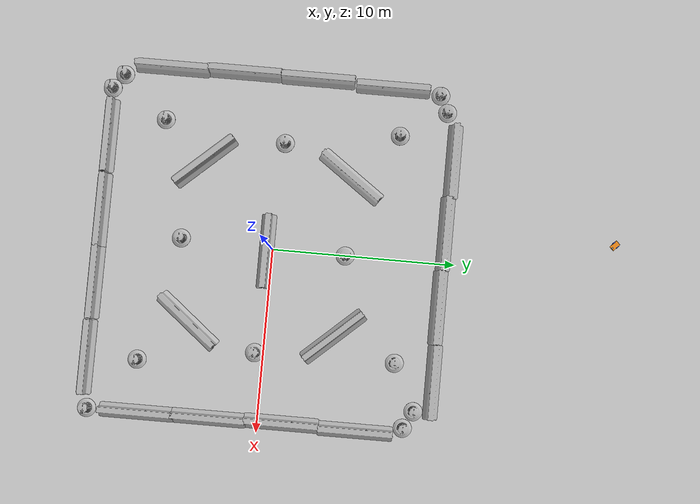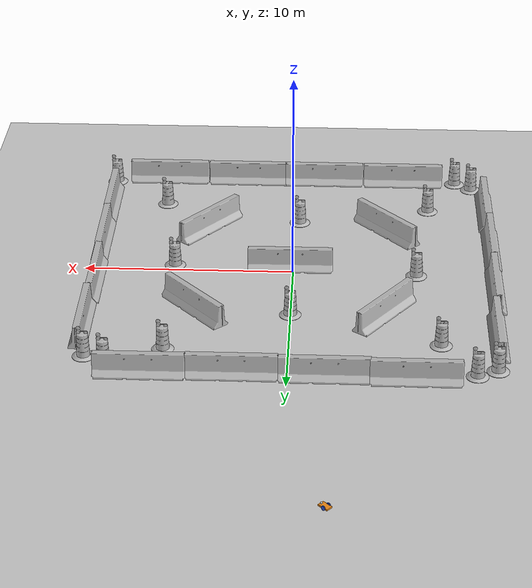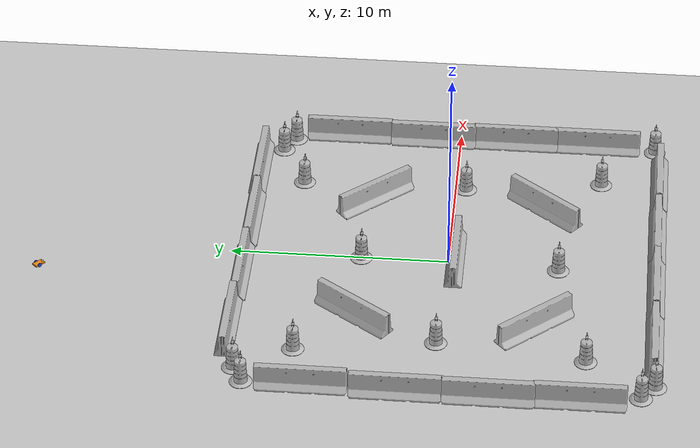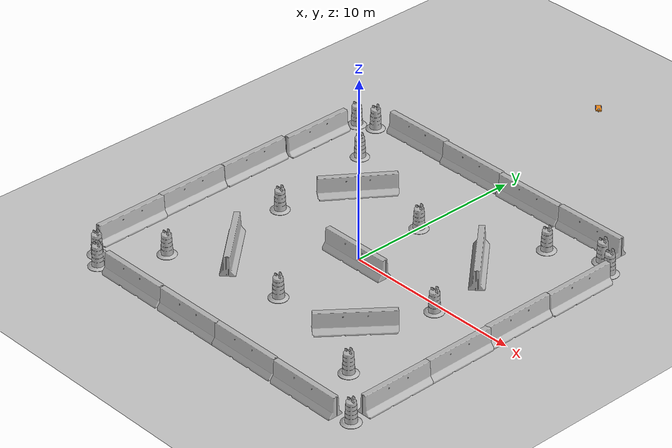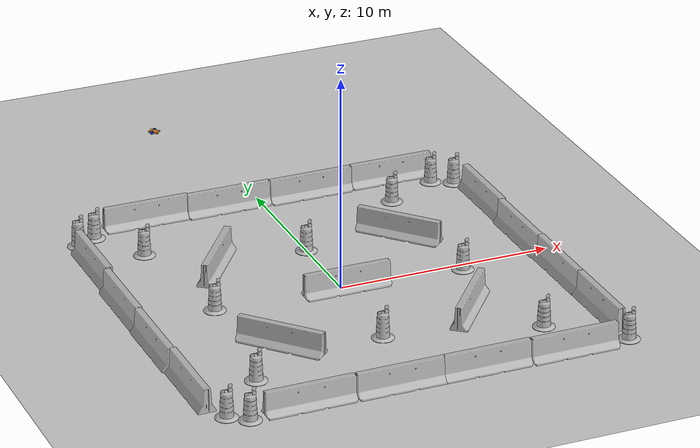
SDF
<sdf version="1.7">
 <world name="default">
  <light name="sun" type="directional">
   <pose>0 0 10 0 -0 0</pose>
   <diffuse>0.8 0.8 0.8 1</diffuse>
   <specular>0.2 0.2 0.2 1</specular>
   <attenuation>
    <range>1000</range>
    <constant>0.9</constant>
    <linear>0.01</linear>
    <quadratic>0.001</quadratic>
   </attenuation>
   <direction>-0.5 0.1 -0.9</direction>
   <spot><inner_angle>0</inner_angle><outer_angle>0</outer_angle><falloff>0</falloff></spot>
  </light>
  <model name="ground_plane">
   <static>1</static>
   <link name="link">
    <collision name="collision">
     <geometry><plane><normal>0 0 1</normal><size>100 100</size></plane></geometry>
     <surface><friction><ode><mu>100</mu><mu2>50</mu2></ode></friction></surface>
    </collision>
    <visual name="visual">
     <cast_shadows>0</cast_shadows>
     <geometry><plane><normal>0 0 1</normal><size>100 100</size></plane></geometry>
     <material>
      <script><uri>file://media/materials/scripts/gazebo.material</uri><name>Gazebo/Grey</name></script>
     </material>
    </visual>
   </link>
  </model>
  <gravity>0 0 -9.8</gravity>
  <magnetic_field>6e-06 2.3e-05 -4.2e-05</magnetic_field>
  <atmosphere type="adiabatic"/>
  <physics name="default_physics" default="0" type="ode">
   <max_step_size>0.001</max_step_size>
   <real_time_factor>1</real_time_factor>
   <real_time_update_rate>1000</real_time_update_rate>
  </physics>
  <scene><ambient>0.4 0.4 0.4 1</ambient><background>0.7 0.7 0.7 1</background><shadows>1</shadows></scene>
  <spherical_coordinates>
   <surface_model>EARTH_WGS84</surface_model>
   <latitude_deg>0</latitude_deg>
   <longitude_deg>0</longitude_deg>
   <elevation>0</elevation>
   <heading_deg>0</heading_deg>
  </spherical_coordinates>
  <model name="jersey_barrier">
   <static>1</static>
   <link name="link">
    <visual name="visual">
     <geometry><mesh><uri>model://jersey_barrier/meshes/jersey_barrier.dae</uri></mesh></geometry>
    </visual>
    <collision name="upright">
     <pose>0 0 0.5715 0 -0 0</pose>
     <geometry><box><size>4.06542 0.3063 1.143</size></box></geometry>
    </collision>
    <collision name="base">
     <pose>0 0 0.032258 0 -0 0</pose>
     <geometry><box><size>4.06542 0.8107 0.064516</size></box></geometry>
    </collision>
    <collision name="base2">
     <pose>0 0 0.1 0 -0 0</pose>
     <geometry><box><size>4.06542 0.65 0.1</size></box></geometry>
    </collision>
    <collision name="base3">
     <pose>0 0 0.2 0 -0 0</pose>
     <geometry><box><size>4.06542 0.5 0.1</size></box></geometry>
    </collision>
    <collision name="left-angle">
     <pose>0 -0.224 0.2401 0.9 -0 0</pose>
     <geometry><box><size>4.06542 0.5 0.064516</size></box></geometry>
    </collision>
    <collision name="right-angle">
     <pose>0 0.224 0.2401 -0.9 0 0</pose>
     <geometry><box><size>4.06542 0.5 0.064516</size></box></geometry>
    </collision>
   </link>
   <pose>-5.65677 9.4608 0 0 -0 0</pose>
  </model>
  <model name="jersey_barrier_clone">
   <static>1</static>
   <link name="link">
    <visual name="visual">
     <geometry><mesh><uri>model://jersey_barrier/meshes/jersey_barrier.dae</uri></mesh></geometry>
    </visual>
    <collision name="upright">
     <pose>0 0 0.5715 0 -0 0</pose>
     <geometry><box><size>4.06542 0.3063 1.143</size></box></geometry>
    </collision>
    <collision name="base">
     <pose>0 0 0.032258 0 -0 0</pose>
     <geometry><box><size>4.06542 0.8107 0.064516</size></box></geometry>
    </collision>
    <collision name="base2">
     <pose>0 0 0.1 0 -0 0</pose>
     <geometry><box><size>4.06542 0.65 0.1</size></box></geometry>
    </collision>
    <collision name="base3">
     <pose>0 0 0.2 0 -0 0</pose>
     <geometry><box><size>4.06542 0.5 0.1</size></box></geometry>
    </collision>
    <collision name="left-angle">
     <pose>0 -0.224 0.2401 0.9 -0 0</pose>
     <geometry><box><size>4.06542 0.5 0.064516</size></box></geometry>
    </collision>
    <collision name="right-angle">
     <pose>0 0.224 0.2401 -0.9 0 0</pose>
     <geometry><box><size>4.06542 0.5 0.064516</size></box></geometry>
    </collision>
   </link>
   <pose>-1.65987 9.36075 0 0 -0 0</pose>
  </model>
  <model name="jersey_barrier_clone_0">
   <static>1</static>
   <link name="link">
    <visual name="visual">
     <geometry><mesh><uri>model://jersey_barrier/meshes/jersey_barrier.dae</uri></mesh></geometry>
    </visual>
    <collision name="upright">
     <pose>0 0 0.5715 0 -0 0</pose>
     <geometry><box><size>4.06542 0.3063 1.143</size></box></geometry>
    </collision>
    <collision name="base">
     <pose>0 0 0.032258 0 -0 0</pose>
     <geometry><box><size>4.06542 0.8107 0.064516</size></box></geometry>
    </collision>
    <collision name="base2">
     <pose>0 0 0.1 0 -0 0</pose>
     <geometry><box><size>4.06542 0.65 0.1</size></box></geometry>
    </collision>
    <collision name="base3">
     <pose>0 0 0.2 0 -0 0</pose>
     <geometry><box><size>4.06542 0.5 0.1</size></box></geometry>
    </collision>
    <collision name="left-angle">
     <pose>0 -0.224 0.2401 0.9 -0 0</pose>
     <geometry><box><size>4.06542 0.5 0.064516</size></box></geometry>
    </collision>
    <collision name="right-angle">
     <pose>0 0.224 0.2401 -0.9 0 0</pose>
     <geometry><box><size>4.06542 0.5 0.064516</size></box></geometry>
    </collision>
   </link>
   <pose>2.39773 9.29085 0 0 -0 0</pose>
  </model>
  <model name="jersey_barrier_clone_1">
   <static>1</static>
   <link name="link">
    <visual name="visual">
     <geometry><mesh><uri>model://jersey_barrier/meshes/jersey_barrier.dae</uri></mesh></geometry>
    </visual>
    <collision name="upright">
     <pose>0 0 0.5715 0 -0 0</pose>
     <geometry><box><size>4.06542 0.3063 1.143</size></box></geometry>
    </collision>
    <collision name="base">
     <pose>0 0 0.032258 0 -0 0</pose>
     <geometry><box><size>4.06542 0.8107 0.064516</size></box></geometry>
    </collision>
    <collision name="base2">
     <pose>0 0 0.1 0 -0 0</pose>
     <geometry><box><size>4.06542 0.65 0.1</size></box></geometry>
    </collision>
    <collision name="base3">
     <pose>0 0 0.2 0 -0 0</pose>
     <geometry><box><size>4.06542 0.5 0.1</size></box></geometry>
    </collision>
    <collision name="left-angle">
     <pose>0 -0.224 0.2401 0.9 -0 0</pose>
     <geometry><box><size>4.06542 0.5 0.064516</size></box></geometry>
    </collision>
    <collision name="right-angle">
     <pose>0 0.224 0.2401 -0.9 0 0</pose>
     <geometry><box><size>4.06542 0.5 0.064516</size></box></geometry>
    </collision>
   </link>
   <pose>6.45464 9.33993 0 0 -0 0</pose>
  </model>
  <model name="jersey_barrier_clone_3">
   <static>1</static>
   <link name="link">
    <visual name="visual">
     <geometry><mesh><uri>model://jersey_barrier/meshes/jersey_barrier.dae</uri></mesh></geometry>
    </visual>
    <collision name="upright">
     <pose>0 0 0.5715 0 -0 0</pose>
     <geometry><box><size>4.06542 0.3063 1.143</size></box></geometry>
    </collision>
    <collision name="base">
     <pose>0 0 0.032258 0 -0 0</pose>
     <geometry><box><size>4.06542 0.8107 0.064516</size></box></geometry>
    </collision>
    <collision name="base2">
     <pose>0 0 0.1 0 -0 0</pose>
     <geometry><box><size>4.06542 0.65 0.1</size></box></geometry>
    </collision>
    <collision name="base3">
     <pose>0 0 0.2 0 -0 0</pose>
     <geometry><box><size>4.06542 0.5 0.1</size></box></geometry>
    </collision>
    <collision name="left-angle">
     <pose>0 -0.224 0.2401 0.9 -0 0</pose>
     <geometry><box><size>4.06542 0.5 0.064516</size></box></geometry>
    </collision>
    <collision name="right-angle">
     <pose>0 0.224 0.2401 -0.9 0 0</pose>
     <geometry><box><size>4.06542 0.5 0.064516</size></box></geometry>
    </collision>
   </link>
   <pose>9.44656 5.35522 0 0 0 -1.56865</pose>
  </model>
  <model name="jersey_barrier_clone_3_clone">
   <static>1</static>
   <link name="link">
    <visual name="visual">
     <geometry><mesh><uri>model://jersey_barrier/meshes/jersey_barrier.dae</uri></mesh></geometry>
    </visual>
    <collision name="upright">
     <pose>0 0 0.5715 0 -0 0</pose>
     <geometry><box><size>4.06542 0.3063 1.143</size></box></geometry>
    </collision>
    <collision name="base">
     <pose>0 0 0.032258 0 -0 0</pose>
     <geometry><box><size>4.06542 0.8107 0.064516</size></box></geometry>
    </collision>
    <collision name="base2">
     <pose>0 0 0.1 0 -0 0</pose>
     <geometry><box><size>4.06542 0.65 0.1</size></box></geometry>
    </collision>
    <collision name="base3">
     <pose>0 0 0.2 0 -0 0</pose>
     <geometry><box><size>4.06542 0.5 0.1</size></box></geometry>
    </collision>
    <collision name="left-angle">
     <pose>0 -0.224 0.2401 0.9 -0 0</pose>
     <geometry><box><size>4.06542 0.5 0.064516</size></box></geometry>
    </collision>
    <collision name="right-angle">
     <pose>0 0.224 0.2401 -0.9 0 0</pose>
     <geometry><box><size>4.06542 0.5 0.064516</size></box></geometry>
    </collision>
   </link>
   <pose>9.3727 1.33119 0 0 0 -1.56865</pose>
  </model>
  <model name="jersey_barrier_clone_3_clone_0">
   <static>1</static>
   <link name="link">
    <visual name="visual">
     <geometry><mesh><uri>model://jersey_barrier/meshes/jersey_barrier.dae</uri></mesh></geometry>
    </visual>
    <collision name="upright">
     <pose>0 0 0.5715 0 -0 0</pose>
     <geometry><box><size>4.06542 0.3063 1.143</size></box></geometry>
    </collision>
    <collision name="base">
     <pose>0 0 0.032258 0 -0 0</pose>
     <geometry><box><size>4.06542 0.8107 0.064516</size></box></geometry>
    </collision>
    <collision name="base2">
     <pose>0 0 0.1 0 -0 0</pose>
     <geometry><box><size>4.06542 0.65 0.1</size></box></geometry>
    </collision>
    <collision name="base3">
     <pose>0 0 0.2 0 -0 0</pose>
     <geometry><box><size>4.06542 0.5 0.1</size></box></geometry>
    </collision>
    <collision name="left-angle">
     <pose>0 -0.224 0.2401 0.9 -0 0</pose>
     <geometry><box><size>4.06542 0.5 0.064516</size></box></geometry>
    </collision>
    <collision name="right-angle">
     <pose>0 0.224 0.2401 -0.9 0 0</pose>
     <geometry><box><size>4.06542 0.5 0.064516</size></box></geometry>
    </collision>
   </link>
   <pose>9.4315 -2.6268 0 0 0 -1.56865</pose>
  </model>
  <model name="jersey_barrier_clone_3_clone_1">
   <static>1</static>
   <link name="link">
    <visual name="visual">
     <geometry><mesh><uri>model://jersey_barrier/meshes/jersey_barrier.dae</uri></mesh></geometry>
    </visual>
    <collision name="upright">
     <pose>0 0 0.5715 0 -0 0</pose>
     <geometry><box><size>4.06542 0.3063 1.143</size></box></geometry>
    </collision>
    <collision name="base">
     <pose>0 0 0.032258 0 -0 0</pose>
     <geometry><box><size>4.06542 0.8107 0.064516</size></box></geometry>
    </collision>
    <collision name="base2">
     <pose>0 0 0.1 0 -0 0</pose>
     <geometry><box><size>4.06542 0.65 0.1</size></box></geometry>
    </collision>
    <collision name="base3">
     <pose>0 0 0.2 0 -0 0</pose>
     <geometry><box><size>4.06542 0.5 0.1</size></box></geometry>
    </collision>
    <collision name="left-angle">
     <pose>0 -0.224 0.2401 0.9 -0 0</pose>
     <geometry><box><size>4.06542 0.5 0.064516</size></box></geometry>
    </collision>
    <collision name="right-angle">
     <pose>0 0.224 0.2401 -0.9 0 0</pose>
     <geometry><box><size>4.06542 0.5 0.064516</size></box></geometry>
    </collision>
   </link>
   <pose>9.44969 -6.53485 0 0 0 -1.56865</pose>
  </model>
  <model name="jersey_barrier_clone_2_clone">
   <static>1</static>
   <link name="link">
    <visual name="visual">
     <geometry><mesh><uri>model://jersey_barrier/meshes/jersey_barrier.dae</uri></mesh></geometry>
    </visual>
    <collision name="upright">
     <pose>0 0 0.5715 0 -0 0</pose>
     <geometry><box><size>4.06542 0.3063 1.143</size></box></geometry>
    </collision>
    <collision name="base">
     <pose>0 0 0.032258 0 -0 0</pose>
     <geometry><box><size>4.06542 0.8107 0.064516</size></box></geometry>
    </collision>
    <collision name="base2">
     <pose>0 0 0.1 0 -0 0</pose>
     <geometry><box><size>4.06542 0.65 0.1</size></box></geometry>
    </collision>
    <collision name="base3">
     <pose>0 0 0.2 0 -0 0</pose>
     <geometry><box><size>4.06542 0.5 0.1</size></box></geometry>
    </collision>
    <collision name="left-angle">
     <pose>0 -0.224 0.2401 0.9 -0 0</pose>
     <geometry><box><size>4.06542 0.5 0.064516</size></box></geometry>
    </collision>
    <collision name="right-angle">
     <pose>0 0.224 0.2401 -0.9 0 0</pose>
     <geometry><box><size>4.06542 0.5 0.064516</size></box></geometry>
    </collision>
   </link>
   <pose>6.70657 -9.54347 0 0 -0 0</pose>
  </model>
  <model name="jersey_barrier_clone_2_clone_0">
   <static>1</static>
   <link name="link">
    <visual name="visual">
     <geometry><mesh><uri>model://jersey_barrier/meshes/jersey_barrier.dae</uri></mesh></geometry>
    </visual>
    <collision name="upright">
     <pose>0 0 0.5715 0 -0 0</pose>
     <geometry><box><size>4.06542 0.3063 1.143</size></box></geometry>
    </collision>
    <collision name="base">
     <pose>0 0 0.032258 0 -0 0</pose>
     <geometry><box><size>4.06542 0.8107 0.064516</size></box></geometry>
    </collision>
    <collision name="base2">
     <pose>0 0 0.1 0 -0 0</pose>
     <geometry><box><size>4.06542 0.65 0.1</size></box></geometry>
    </collision>
    <collision name="base3">
     <pose>0 0 0.2 0 -0 0</pose>
     <geometry><box><size>4.06542 0.5 0.1</size></box></geometry>
    </collision>
    <collision name="left-angle">
     <pose>0 -0.224 0.2401 0.9 -0 0</pose>
     <geometry><box><size>4.06542 0.5 0.064516</size></box></geometry>
    </collision>
    <collision name="right-angle">
     <pose>0 0.224 0.2401 -0.9 0 0</pose>
     <geometry><box><size>4.06542 0.5 0.064516</size></box></geometry>
    </collision>
   </link>
   <pose>2.59616 -9.50928 0 0 -0 0</pose>
  </model>
  <model name="jersey_barrier_clone_2_clone_1">
   <static>1</static>
   <link name="link">
    <visual name="visual">
     <geometry><mesh><uri>model://jersey_barrier/meshes/jersey_barrier.dae</uri></mesh></geometry>
    </visual>
    <collision name="upright">
     <pose>0 0 0.5715 0 -0 0</pose>
     <geometry><box><size>4.06542 0.3063 1.143</size></box></geometry>
    </collision>
    <collision name="base">
     <pose>0 0 0.032258 0 -0 0</pose>
     <geometry><box><size>4.06542 0.8107 0.064516</size></box></geometry>
    </collision>
    <collision name="base2">
     <pose>0 0 0.1 0 -0 0</pose>
     <geometry><box><size>4.06542 0.65 0.1</size></box></geometry>
    </collision>
    <collision name="base3">
     <pose>0 0 0.2 0 -0 0</pose>
     <geometry><box><size>4.06542 0.5 0.1</size></box></geometry>
    </collision>
    <collision name="left-angle">
     <pose>0 -0.224 0.2401 0.9 -0 0</pose>
     <geometry><box><size>4.06542 0.5 0.064516</size></box></geometry>
    </collision>
    <collision name="right-angle">
     <pose>0 0.224 0.2401 -0.9 0 0</pose>
     <geometry><box><size>4.06542 0.5 0.064516</size></box></geometry>
    </collision>
   </link>
   <pose>-1.33414 -9.50852 0 0 -0 0</pose>
  </model>
  <model name="jersey_barrier_clone_2_clone_2">
   <static>1</static>
   <link name="link">
    <visual name="visual">
     <geometry><mesh><uri>model://jersey_barrier/meshes/jersey_barrier.dae</uri></mesh></geometry>
    </visual>
    <collision name="upright">
     <pose>0 0 0.5715 0 -0 0</pose>
     <geometry><box><size>4.06542 0.3063 1.143</size></box></geometry>
    </collision>
    <collision name="base">
     <pose>0 0 0.032258 0 -0 0</pose>
     <geometry><box><size>4.06542 0.8107 0.064516</size></box></geometry>
    </collision>
    <collision name="base2">
     <pose>0 0 0.1 0 -0 0</pose>
     <geometry><box><size>4.06542 0.65 0.1</size></box></geometry>
    </collision>
    <collision name="base3">
     <pose>0 0 0.2 0 -0 0</pose>
     <geometry><box><size>4.06542 0.5 0.1</size></box></geometry>
    </collision>
    <collision name="left-angle">
     <pose>0 -0.224 0.2401 0.9 -0 0</pose>
     <geometry><box><size>4.06542 0.5 0.064516</size></box></geometry>
    </collision>
    <collision name="right-angle">
     <pose>0 0.224 0.2401 -0.9 0 0</pose>
     <geometry><box><size>4.06542 0.5 0.064516</size></box></geometry>
    </collision>
   </link>
   <pose>-5.44605 -9.49634 0 0 -0 0</pose>
  </model>
  <model name="jersey_barrier_clone_3_clone_1_clone">
   <static>1</static>
   <link name="link">
    <visual name="visual">
     <geometry><mesh><uri>model://jersey_barrier/meshes/jersey_barrier.dae</uri></mesh></geometry>
    </visual>
    <collision name="upright">
     <pose>0 0 0.5715 0 -0 0</pose>
     <geometry><box><size>4.06542 0.3063 1.143</size></box></geometry>
    </collision>
    <collision name="base">
     <pose>0 0 0.032258 0 -0 0</pose>
     <geometry><box><size>4.06542 0.8107 0.064516</size></box></geometry>
    </collision>
    <collision name="base2">
     <pose>0 0 0.1 0 -0 0</pose>
     <geometry><box><size>4.06542 0.65 0.1</size></box></geometry>
    </collision>
    <collision name="base3">
     <pose>0 0 0.2 0 -0 0</pose>
     <geometry><box><size>4.06542 0.5 0.1</size></box></geometry>
    </collision>
    <collision name="left-angle">
     <pose>0 -0.224 0.2401 0.9 -0 0</pose>
     <geometry><box><size>4.06542 0.5 0.064516</size></box></geometry>
    </collision>
    <collision name="right-angle">
     <pose>0 0.224 0.2401 -0.9 0 0</pose>
     <geometry><box><size>4.06542 0.5 0.064516</size></box></geometry>
    </collision>
   </link>
   <pose>-9.54289 -6.33149 0 0 0 -1.56865</pose>
  </model>
  <model name="jersey_barrier_clone_3_clone_1_clone_0">
   <static>1</static>
   <link name="link">
    <visual name="visual">
     <geometry><mesh><uri>model://jersey_barrier/meshes/jersey_barrier.dae</uri></mesh></geometry>
    </visual>
    <collision name="upright">
     <pose>0 0 0.5715 0 -0 0</pose>
     <geometry><box><size>4.06542 0.3063 1.143</size></box></geometry>
    </collision>
    <collision name="base">
     <pose>0 0 0.032258 0 -0 0</pose>
     <geometry><box><size>4.06542 0.8107 0.064516</size></box></geometry>
    </collision>
    <collision name="base2">
     <pose>0 0 0.1 0 -0 0</pose>
     <geometry><box><size>4.06542 0.65 0.1</size></box></geometry>
    </collision>
    <collision name="base3">
     <pose>0 0 0.2 0 -0 0</pose>
     <geometry><box><size>4.06542 0.5 0.1</size></box></geometry>
    </collision>
    <collision name="left-angle">
     <pose>0 -0.224 0.2401 0.9 -0 0</pose>
     <geometry><box><size>4.06542 0.5 0.064516</size></box></geometry>
    </collision>
    <collision name="right-angle">
     <pose>0 0.224 0.2401 -0.9 0 0</pose>
     <geometry><box><size>4.06542 0.5 0.064516</size></box></geometry>
    </collision>
   </link>
   <pose>-9.6221 -2.35336 0 0 0 -1.56865</pose>
  </model>
  <model name="jersey_barrier_clone_3_clone_1_clone_1">
   <static>1</static>
   <link name="link">
    <visual name="visual">
     <geometry><mesh><uri>model://jersey_barrier/meshes/jersey_barrier.dae</uri></mesh></geometry>
    </visual>
    <collision name="upright">
     <pose>0 0 0.5715 0 -0 0</pose>
     <geometry><box><size>4.06542 0.3063 1.143</size></box></geometry>
    </collision>
    <collision name="base">
     <pose>0 0 0.032258 0 -0 0</pose>
     <geometry><box><size>4.06542 0.8107 0.064516</size></box></geometry>
    </collision>
    <collision name="base2">
     <pose>0 0 0.1 0 -0 0</pose>
     <geometry><box><size>4.06542 0.65 0.1</size></box></geometry>
    </collision>
    <collision name="base3">
     <pose>0 0 0.2 0 -0 0</pose>
     <geometry><box><size>4.06542 0.5 0.1</size></box></geometry>
    </collision>
    <collision name="left-angle">
     <pose>0 -0.224 0.2401 0.9 -0 0</pose>
     <geometry><box><size>4.06542 0.5 0.064516</size></box></geometry>
    </collision>
    <collision name="right-angle">
     <pose>0 0.224 0.2401 -0.9 0 0</pose>
     <geometry><box><size>4.06542 0.5 0.064516</size></box></geometry>
    </collision>
   </link>
   <pose>-9.58952 1.69745 0 0 0 -1.56865</pose>
  </model>
  <model name="jersey_barrier_clone_3_clone_1_clone_2">
   <static>1</static>
   <link name="link">
    <visual name="visual">
     <geometry><mesh><uri>model://jersey_barrier/meshes/jersey_barrier.dae</uri></mesh></geometry>
    </visual>
    <collision name="upright">
     <pose>0 0 0.5715 0 -0 0</pose>
     <geometry><box><size>4.06542 0.3063 1.143</size></box></geometry>
    </collision>
    <collision name="base">
     <pose>0 0 0.032258 0 -0 0</pose>
     <geometry><box><size>4.06542 0.8107 0.064516</size></box></geometry>
    </collision>
    <collision name="base2">
     <pose>0 0 0.1 0 -0 0</pose>
     <geometry><box><size>4.06542 0.65 0.1</size></box></geometry>
    </collision>
    <collision name="base3">
     <pose>0 0 0.2 0 -0 0</pose>
     <geometry><box><size>4.06542 0.5 0.1</size></box></geometry>
    </collision>
    <collision name="left-angle">
     <pose>0 -0.224 0.2401 0.9 -0 0</pose>
     <geometry><box><size>4.06542 0.5 0.064516</size></box></geometry>
    </collision>
    <collision name="right-angle">
     <pose>0 0.224 0.2401 -0.9 0 0</pose>
     <geometry><box><size>4.06542 0.5 0.064516</size></box></geometry>
    </collision>
   </link>
   <pose>-9.44715 5.83721 0 0 0 -1.56865</pose>
  </model>
  <model name="Construction Barrel">
   <link name="link">
    <inertial>
     <pose>0 0 0.4 0 -0 0</pose>
     <mass>500</mass>
     <inertia><ixx>51.2096</ixx><iyy>51.2096</iyy><izz>25</izz><ixy>0</ixy><ixz>0</ixz><iyz>0</iyz></inertia>
    </inertial>
    <collision name="collision">
     <geometry><mesh><uri>model://construction_barrel/meshes/construction_barrel.dae</uri></mesh></geometry>
    </collision>
    <visual name="visual">
     <geometry><mesh><uri>model://construction_barrel/meshes/construction_barrel.dae</uri></mesh></geometry>
    </visual>
   </link>
   <pose>9.07445 7.9106 -2e-06 7e-06 -2e-06 -4.2e-05</pose>
  </model>
  <model name="Construction Barrel_0">
   <link name="link">
    <inertial>
     <pose>0 0 0.4 0 -0 0</pose>
     <mass>500</mass>
     <inertia><ixx>51.2096</ixx><iyy>51.2096</iyy><izz>25</izz><ixy>0</ixy><ixz>0</ixz><iyz>0</iyz></inertia>
    </inertial>
    <collision name="collision">
     <geometry><mesh><uri>model://construction_barrel/meshes/construction_barrel.dae</uri></mesh></geometry>
    </collision>
    <visual name="visual">
     <geometry><mesh><uri>model://construction_barrel/meshes/construction_barrel.dae</uri></mesh></geometry>
    </visual>
   </link>
   <pose>8.12828 8.41641 -1e-06 4e-06 -2e-06 -4.1e-05</pose>
  </model>
  <model name="Construction Barrel_1">
   <link name="link">
    <inertial>
     <pose>0 0 0.4 0 -0 0</pose>
     <mass>500</mass>
     <inertia><ixx>51.2096</ixx><iyy>51.2096</iyy><izz>25</izz><ixy>0</ixy><ixz>0</ixz><iyz>0</iyz></inertia>
    </inertial>
    <collision name="collision">
     <geometry><mesh><uri>model://construction_barrel/meshes/construction_barrel.dae</uri></mesh></geometry>
    </collision>
    <visual name="visual">
     <geometry><mesh><uri>model://construction_barrel/meshes/construction_barrel.dae</uri></mesh></geometry>
    </visual>
   </link>
   <pose>-9.2726 8.48395 -2e-06 7e-06 -2e-06 -3.1e-05</pose>
  </model>
  <model name="Construction Barrel_2">
   <link name="link">
    <inertial>
     <pose>0 0 0.4 0 -0 0</pose>
     <mass>500</mass>
     <inertia><ixx>51.2096</ixx><iyy>51.2096</iyy><izz>25</izz><ixy>0</ixy><ixz>0</ixz><iyz>0</iyz></inertia>
    </inertial>
    <collision name="collision">
     <geometry><mesh><uri>model://construction_barrel/meshes/construction_barrel.dae</uri></mesh></geometry>
    </collision>
    <visual name="visual">
     <geometry><mesh><uri>model://construction_barrel/meshes/construction_barrel.dae</uri></mesh></geometry>
    </visual>
   </link>
   <pose>-8.34358 8.93856 -2e-06 -7e-06 -4e-06 -3.5e-05</pose>
  </model>
  <model name="Construction Barrel_3">
   <link name="link">
    <inertial>
     <pose>0 0 0.4 0 -0 0</pose>
     <mass>500</mass>
     <inertia><ixx>51.2096</ixx><iyy>51.2096</iyy><izz>25</izz><ixy>0</ixy><ixz>0</ixz><iyz>0</iyz></inertia>
    </inertial>
    <collision name="collision">
     <geometry><mesh><uri>model://construction_barrel/meshes/construction_barrel.dae</uri></mesh></geometry>
    </collision>
    <visual name="visual">
     <geometry><mesh><uri>model://construction_barrel/meshes/construction_barrel.dae</uri></mesh></geometry>
    </visual>
   </link>
   <pose>9.45359 -9.29428 -2e-06 -0 7e-06 -3.5e-05</pose>
  </model>
  <model name="Construction Barrel_4">
   <link name="link">
    <inertial>
     <pose>0 0 0.4 0 -0 0</pose>
     <mass>500</mass>
     <inertia><ixx>51.2096</ixx><iyy>51.2096</iyy><izz>25</izz><ixy>0</ixy><ixz>0</ixz><iyz>0</iyz></inertia>
    </inertial>
    <collision name="collision">
     <geometry><mesh><uri>model://construction_barrel/meshes/construction_barrel.dae</uri></mesh></geometry>
    </collision>
    <visual name="visual">
     <geometry><mesh><uri>model://construction_barrel/meshes/construction_barrel.dae</uri></mesh></geometry>
    </visual>
   </link>
   <pose>-8.13318 -9.57173 -0 0 0 -0.000464</pose>
  </model>
  <model name="Construction Barrel_5">
   <link name="link">
    <inertial>
     <pose>0 0 0.4 0 -0 0</pose>
     <mass>500</mass>
     <inertia><ixx>51.2096</ixx><iyy>51.2096</iyy><izz>25</izz><ixy>0</ixy><ixz>0</ixz><iyz>0</iyz></inertia>
    </inertial>
    <collision name="collision">
     <geometry><mesh><uri>model://construction_barrel/meshes/construction_barrel.dae</uri></mesh></geometry>
    </collision>
    <visual name="visual">
     <geometry><mesh><uri>model://construction_barrel/meshes/construction_barrel.dae</uri></mesh></geometry>
    </visual>
   </link>
   <pose>-8.93844 -8.96004 -1e-06 3e-06 -2e-06 -0.000316</pose>
  </model>
  <model name="m2wr">
   <link name="link_chassis">
    <inertial>
     <pose>0.025 0 0.091667 0 -0 0</pose>
     <mass>6</mass>
     <inertia>
      <ixx>0.0430833</ixx>
      <ixy>0</ixy>
      <ixz>0.00625</ixz>
      <iyy>0.1285</iyy>
      <iyz>0</iyz>
      <izz>0.126208</izz>
     </inertia>
    </inertial>
    <collision name="link_chassis_fixed_joint_lump__collision_chassis_collision">
     <geometry><box><size>0.5 0.3 0.07</size></box></geometry>
    </collision>
    <collision name="link_chassis_fixed_joint_lump__caster_front_collision_collision_1">
     <pose>0.35 0 -0.05 0 -0 0</pose>
     <geometry><sphere><radius>0.05</radius></sphere></geometry>
    </collision>
    <collision name="link_chassis_fixed_joint_lump__sensor_laser_collision_2">
     <pose>0.15 0 0.05 0 -0 0</pose>
     <geometry><cylinder><length>0.1</length><radius>0.05</radius></cylinder></geometry>
    </collision>
    <visual name="link_chassis_visual">
     <geometry><box><size>0.5 0.3 0.07</size></box></geometry>
     <material>
      <script><name>Gazebo/Orange</name><uri>file://media/materials/scripts/gazebo.material</uri></script>
     </material>
    </visual>
    <visual name="link_chassis_fixed_joint_lump__caster_front_visual_visual_1">
     <pose>0.2 0 -0.05 0 -0 0</pose>
     <geometry><sphere><radius>0.05</radius></sphere></geometry>
    </visual>
    <visual name="link_chassis_fixed_joint_lump__sensor_laser_visual_2">
     <pose>0.15 0 0.05 0 -0 0</pose>
     <geometry><cylinder><length>0.1</length><radius>0.05</radius></cylinder></geometry>
    </visual>
    <sensor name="head_hokuyo_sensor" type="ray">
     <visualize>0</visualize>
     <update_rate>20</update_rate>
     <ray>
      <scan>
       <horizontal>
        <samples>720</samples>
        <resolution>1</resolution>
        <min_angle>-1.5708</min_angle>
        <max_angle>1.5708</max_angle>
       </horizontal>
       <vertical><samples>1</samples><min_angle>0</min_angle><max_angle>0</max_angle></vertical>
      </scan>
      <range><min>0.1</min><max>10</max><resolution>0.01</resolution></range>
      <noise><type>gaussian</type><mean>0</mean><stddev>0.01</stddev></noise>
     </ray>
     <plugin name="gazebo_ros_head_hokuyo_controller" filename="libgazebo_ros_laser.so">
      <topicName>/m2wr/laser/scan</topicName>
      <frameName>sensor_laser</frameName>
      <robotNamespace>/</robotNamespace>
     </plugin>
     <pose>0.15 0 0.05 0 -0 0</pose>
    </sensor>
   </link>
   <joint name="joint_left_wheel" type="revolute">
    <pose relative_to="link_chassis">-0.05 -0.15 0 0 -0 0</pose>
    <parent>link_chassis</parent>
    <child>link_left_wheel</child>
    <axis>
     <xyz>0 1 0</xyz>
     <limit><effort>10000</effort><velocity>1000</velocity><lower>-1e+16</lower><upper>1e+16</upper></limit>
     <dynamics><spring_reference>0</spring_reference><spring_stiffness>0</spring_stiffness></dynamics>
    </axis>
   </joint>
   <link name="link_left_wheel">
    <pose relative_to="joint_left_wheel">0 0 0 0 -0 0</pose>
    <inertial>
     <pose>0 0 0 -0 1.5707 1.5707</pose>
     <mass>0.2</mass>
     <inertia>
      <ixx>0.000526667</ixx>
      <ixy>0</ixy>
      <ixz>0</ixz>
      <iyy>0.000526667</iyy>
      <iyz>0</iyz>
      <izz>0.001</izz>
     </inertia>
    </inertial>
    <collision name="link_left_wheel_fixed_joint_lump__link_right_wheel_collision_collision">
     <pose>0 0 0 1.57089 1.57079 -3.14159</pose>
     <geometry><cylinder><length>0.04</length><radius>0.1</radius></cylinder></geometry>
    </collision>
    <visual name="link_left_wheel_visual_visual">
     <pose>0 0 0 1.57089 1.57079 -3.14159</pose>
     <geometry><cylinder><length>0.04</length><radius>0.1</radius></cylinder></geometry>
     <material>
      <script><name>Gazebo/Blue</name><uri>file://media/materials/scripts/gazebo.material</uri></script>
     </material>
    </visual>
   </link>
   <joint name="joint_right_wheel" type="revolute">
    <pose relative_to="link_chassis">-0.05 0.15 0 0 -0 0</pose>
    <parent>link_chassis</parent>
    <child>link_right_wheel</child>
    <axis>
     <xyz>0 1 0</xyz>
     <limit><effort>10000</effort><velocity>1000</velocity><lower>-1e+16</lower><upper>1e+16</upper></limit>
     <dynamics><spring_reference>0</spring_reference><spring_stiffness>0</spring_stiffness></dynamics>
    </axis>
   </joint>
   <link name="link_right_wheel">
    <pose relative_to="joint_right_wheel">0 0 0 0 -0 0</pose>
    <inertial>
     <pose>0 0 0 -0 1.5707 1.5707</pose>
     <mass>0.2</mass>
     <inertia>
      <ixx>0.000526667</ixx>
      <ixy>0</ixy>
      <ixz>0</ixz>
      <iyy>0.000526667</iyy>
      <iyz>0</iyz>
      <izz>0.001</izz>
     </inertia>
    </inertial>
    <collision name="link_right_wheel_collision_collision">
     <pose>0 0 0 1.57089 1.57079 -3.14159</pose>
     <geometry><cylinder><length>0.04</length><radius>0.1</radius></cylinder></geometry>
    </collision>
    <visual name="link_right_wheel_visual_visual">
     <pose>0 0 0 1.57089 1.57079 -3.14159</pose>
     <geometry><cylinder><length>0.04</length><radius>0.1</radius></cylinder></geometry>
     <material>
      <script><name>Gazebo/Blue</name><uri>file://media/materials/scripts/gazebo.material</uri></script>
     </material>
    </visual>
   </link>
   <static>0</static>
   <plugin name="differential_drive_controller" filename="libgazebo_ros_diff_drive.so">
    <legacyMode>1</legacyMode>
    <alwaysOn>1</alwaysOn>
    <updateRate>20</updateRate>
    <leftJoint>joint_left_wheel</leftJoint>
    <rightJoint>joint_right_wheel</rightJoint>
    <wheelSeparation>0.3</wheelSeparation>
    <wheelDiameter>0.2</wheelDiameter>
    <torque>0.1</torque>
    <commandTopic>cmd_vel</commandTopic>
    <odometryTopic>odom</odometryTopic>
    <odometryFrame>odom</odometryFrame>
    <robotBaseFrame>link_chassis</robotBaseFrame>
    <robotNamespace>/</robotNamespace>
   </plugin>
   <pose>-1.8388 18.6654 0.1 3.14159 -2e-06 -0.761966</pose>
  </model>
  <model name="jersey_barrier_clone_3_clone_clone">
   <static>1</static>
   <link name="link">
    <visual name="visual">
     <geometry><mesh><uri>model://jersey_barrier/meshes/jersey_barrier.dae</uri></mesh></geometry>
    </visual>
    <collision name="upright">
     <pose>0 0 0.5715 0 -0 0</pose>
     <geometry><box><size>4.06542 0.3063 1.143</size></box></geometry>
    </collision>
    <collision name="base">
     <pose>0 0 0.032258 0 -0 0</pose>
     <geometry><box><size>4.06542 0.8107 0.064516</size></box></geometry>
    </collision>
    <collision name="base2">
     <pose>0 0 0.1 0 -0 0</pose>
     <geometry><box><size>4.06542 0.65 0.1</size></box></geometry>
    </collision>
    <collision name="base3">
     <pose>0 0 0.2 0 -0 0</pose>
     <geometry><box><size>4.06542 0.5 0.1</size></box></geometry>
    </collision>
    <collision name="left-angle">
     <pose>0 -0.224 0.2401 0.9 -0 0</pose>
     <geometry><box><size>4.06542 0.5 0.064516</size></box></geometry>
    </collision>
    <collision name="right-angle">
     <pose>0 0.224 0.2401 -0.9 0 0</pose>
     <geometry><box><size>4.06542 0.5 0.064516</size></box></geometry>
    </collision>
   </link>
   <pose>4.44455 3.7378 0 0 -0 2.30323</pose>
  </model>
  <model name="jersey_barrier_clone_3_clone_clone_clone">
   <static>1</static>
   <link name="link">
    <visual name="visual">
     <geometry><mesh><uri>model://jersey_barrier/meshes/jersey_barrier.dae</uri></mesh></geometry>
    </visual>
    <collision name="upright">
     <pose>0 0 0.5715 0 -0 0</pose>
     <geometry><box><size>4.06542 0.3063 1.143</size></box></geometry>
    </collision>
    <collision name="base">
     <pose>0 0 0.032258 0 -0 0</pose>
     <geometry><box><size>4.06542 0.8107 0.064516</size></box></geometry>
    </collision>
    <collision name="base2">
     <pose>0 0 0.1 0 -0 0</pose>
     <geometry><box><size>4.06542 0.65 0.1</size></box></geometry>
    </collision>
    <collision name="base3">
     <pose>0 0 0.2 0 -0 0</pose>
     <geometry><box><size>4.06542 0.5 0.1</size></box></geometry>
    </collision>
    <collision name="left-angle">
     <pose>0 -0.224 0.2401 0.9 -0 0</pose>
     <geometry><box><size>4.06542 0.5 0.064516</size></box></geometry>
    </collision>
    <collision name="right-angle">
     <pose>0 0.224 0.2401 -0.9 0 0</pose>
     <geometry><box><size>4.06542 0.5 0.064516</size></box></geometry>
    </collision>
   </link>
   <pose>-4.34349 3.96654 -0 0 -0 0.945081</pose>
  </model>
  <model name="jersey_barrier_clone_3_clone_clone_clone_0">
   <static>1</static>
   <link name="link">
    <visual name="visual">
     <geometry><mesh><uri>model://jersey_barrier/meshes/jersey_barrier.dae</uri></mesh></geometry>
    </visual>
    <collision name="upright">
     <pose>0 0 0.5715 0 -0 0</pose>
     <geometry><box><size>4.06542 0.3063 1.143</size></box></geometry>
    </collision>
    <collision name="base">
     <pose>0 0 0.032258 0 -0 0</pose>
     <geometry><box><size>4.06542 0.8107 0.064516</size></box></geometry>
    </collision>
    <collision name="base2">
     <pose>0 0 0.1 0 -0 0</pose>
     <geometry><box><size>4.06542 0.65 0.1</size></box></geometry>
    </collision>
    <collision name="base3">
     <pose>0 0 0.2 0 -0 0</pose>
     <geometry><box><size>4.06542 0.5 0.1</size></box></geometry>
    </collision>
    <collision name="left-angle">
     <pose>0 -0.224 0.2401 0.9 -0 0</pose>
     <geometry><box><size>4.06542 0.5 0.064516</size></box></geometry>
    </collision>
    <collision name="right-angle">
     <pose>0 0.224 0.2401 -0.9 0 0</pose>
     <geometry><box><size>4.06542 0.5 0.064516</size></box></geometry>
    </collision>
   </link>
   <pose>4.28272 -4.23197 0 0 -0 0.890925</pose>
  </model>
  <model name="jersey_barrier_clone_3_clone_clone_clone_1">
   <static>1</static>
   <link name="link">
    <visual name="visual">
     <geometry><mesh><uri>model://jersey_barrier/meshes/jersey_barrier.dae</uri></mesh></geometry>
    </visual>
    <collision name="upright">
     <pose>0 0 0.5715 0 -0 0</pose>
     <geometry><box><size>4.06542 0.3063 1.143</size></box></geometry>
    </collision>
    <collision name="base">
     <pose>0 0 0.032258 0 -0 0</pose>
     <geometry><box><size>4.06542 0.8107 0.064516</size></box></geometry>
    </collision>
    <collision name="base2">
     <pose>0 0 0.1 0 -0 0</pose>
     <geometry><box><size>4.06542 0.65 0.1</size></box></geometry>
    </collision>
    <collision name="base3">
     <pose>0 0 0.2 0 -0 0</pose>
     <geometry><box><size>4.06542 0.5 0.1</size></box></geometry>
    </collision>
    <collision name="left-angle">
     <pose>0 -0.224 0.2401 0.9 -0 0</pose>
     <geometry><box><size>4.06542 0.5 0.064516</size></box></geometry>
    </collision>
    <collision name="right-angle">
     <pose>0 0.224 0.2401 -0.9 0 0</pose>
     <geometry><box><size>4.06542 0.5 0.064516</size></box></geometry>
    </collision>
   </link>
   <pose>-4.53561 -4.13683 0 0 -0 2.30323</pose>
  </model>
  <model name="jersey_barrier_clone_2_clone_1_clone">
   <static>1</static>
   <link name="link">
    <visual name="visual">
     <geometry><mesh><uri>model://jersey_barrier/meshes/jersey_barrier.dae</uri></mesh></geometry>
    </visual>
    <collision name="upright">
     <pose>0 0 0.5715 0 -0 0</pose>
     <geometry><box><size>4.06542 0.3063 1.143</size></box></geometry>
    </collision>
    <collision name="base">
     <pose>0 0 0.032258 0 -0 0</pose>
     <geometry><box><size>4.06542 0.8107 0.064516</size></box></geometry>
    </collision>
    <collision name="base2">
     <pose>0 0 0.1 0 -0 0</pose>
     <geometry><box><size>4.06542 0.65 0.1</size></box></geometry>
    </collision>
    <collision name="base3">
     <pose>0 0 0.2 0 -0 0</pose>
     <geometry><box><size>4.06542 0.5 0.1</size></box></geometry>
    </collision>
    <collision name="left-angle">
     <pose>0 -0.224 0.2401 0.9 -0 0</pose>
     <geometry><box><size>4.06542 0.5 0.064516</size></box></geometry>
    </collision>
    <collision name="right-angle">
     <pose>0 0.224 0.2401 -0.9 0 0</pose>
     <geometry><box><size>4.06542 0.5 0.064516</size></box></geometry>
    </collision>
   </link>
   <pose>0.135671 -0.315863 0 0 -0 0</pose>
  </model>
  <model name="Construction Barrel_0_clone">
   <link name="link">
    <inertial>
     <pose>0 0 0.4 0 -0 0</pose>
     <mass>500</mass>
     <inertia><ixx>51.2096</ixx><iyy>51.2096</iyy><izz>25</izz><ixy>0</ixy><ixz>0</ixz><iyz>0</iyz></inertia>
    </inertial>
    <collision name="collision">
     <geometry><mesh><uri>model://construction_barrel/meshes/construction_barrel.dae</uri></mesh></geometry>
    </collision>
    <visual name="visual">
     <geometry><mesh><uri>model://construction_barrel/meshes/construction_barrel.dae</uri></mesh></geometry>
    </visual>
   </link>
   <pose>-8e-06 3.99999 -2e-06 7e-06 -2e-06 -4.2e-05</pose>
  </model>
  <model name="Construction Barrel_0_clone_0">
   <link name="link">
    <inertial>
     <pose>0 0 0.4 0 -0 0</pose>
     <mass>500</mass>
     <inertia><ixx>51.2096</ixx><iyy>51.2096</iyy><izz>25</izz><ixy>0</ixy><ixz>0</ixz><iyz>0</iyz></inertia>
    </inertial>
    <collision name="collision">
     <geometry><mesh><uri>model://construction_barrel/meshes/construction_barrel.dae</uri></mesh></geometry>
    </collision>
    <visual name="visual">
     <geometry><mesh><uri>model://construction_barrel/meshes/construction_barrel.dae</uri></mesh></geometry>
    </visual>
   </link>
   <pose>5.69147 -0.465309 -2e-06 0 7e-06 -3.9e-05</pose>
  </model>
  <model name="Construction Barrel_0_clone_1">
   <link name="link">
    <inertial>
     <pose>0 0 0.4 0 -0 0</pose>
     <mass>500</mass>
     <inertia><ixx>51.2096</ixx><iyy>51.2096</iyy><izz>25</izz><ixy>0</ixy><ixz>0</ixz><iyz>0</iyz></inertia>
    </inertial>
    <collision name="collision">
     <geometry><mesh><uri>model://construction_barrel/meshes/construction_barrel.dae</uri></mesh></geometry>
    </collision>
    <visual name="visual">
     <geometry><mesh><uri>model://construction_barrel/meshes/construction_barrel.dae</uri></mesh></geometry>
    </visual>
   </link>
   <pose>-0.200008 -5.03774 1e-06 3e-06 2e-06 -3.7e-05</pose>
  </model>
  <model name="Construction Barrel_0_clone_2">
   <link name="link">
    <inertial>
     <pose>0 0 0.4 0 -0 0</pose>
     <mass>500</mass>
     <inertia><ixx>51.2096</ixx><iyy>51.2096</iyy><izz>25</izz><ixy>0</ixy><ixz>0</ixz><iyz>0</iyz></inertia>
    </inertial>
    <collision name="collision">
     <geometry><mesh><uri>model://construction_barrel/meshes/construction_barrel.dae</uri></mesh></geometry>
    </collision>
    <visual name="visual">
     <geometry><mesh><uri>model://construction_barrel/meshes/construction_barrel.dae</uri></mesh></geometry>
    </visual>
   </link>
   <pose>-5.89818 0.174338 0 0 0 -4e-05</pose>
  </model>
  <model name="Construction Barrel_0_clone_3">
   <link name="link">
    <inertial>
     <pose>0 0 0.4 0 -0 0</pose>
     <mass>500</mass>
     <inertia><ixx>51.2096</ixx><iyy>51.2096</iyy><izz>25</izz><ixy>0</ixy><ixz>0</ixz><iyz>0</iyz></inertia>
    </inertial>
    <collision name="collision">
     <geometry><mesh><uri>model://construction_barrel/meshes/construction_barrel.dae</uri></mesh></geometry>
    </collision>
    <visual name="visual">
     <geometry><mesh><uri>model://construction_barrel/meshes/construction_barrel.dae</uri></mesh></geometry>
    </visual>
   </link>
   <pose>-6.64199 -6.48966 -1e-06 2e-06 -1e-06 -3.5e-05</pose>
  </model>
  <model name="Construction Barrel_0_clone_4">
   <link name="link">
    <inertial>
     <pose>0 0 0.4 0 -0 0</pose>
     <mass>500</mass>
     <inertia><ixx>51.2096</ixx><iyy>51.2096</iyy><izz>25</izz><ixy>0</ixy><ixz>0</ixz><iyz>0</iyz></inertia>
    </inertial>
    <collision name="collision">
     <geometry><mesh><uri>model://construction_barrel/meshes/construction_barrel.dae</uri></mesh></geometry>
    </collision>
    <visual name="visual">
     <geometry><mesh><uri>model://construction_barrel/meshes/construction_barrel.dae</uri></mesh></geometry>
    </visual>
   </link>
   <pose>-6.85265 6.44348 -0 0 0 -3.7e-05</pose>
  </model>
  <model name="Construction Barrel_0_clone_5">
   <link name="link">
    <inertial>
     <pose>0 0 0.4 0 -0 0</pose>
     <mass>500</mass>
     <inertia><ixx>51.2096</ixx><iyy>51.2096</iyy><izz>25</izz><ixy>0</ixy><ixz>0</ixz><iyz>0</iyz></inertia>
    </inertial>
    <collision name="collision">
     <geometry><mesh><uri>model://construction_barrel/meshes/construction_barrel.dae</uri></mesh></geometry>
    </collision>
    <visual name="visual">
     <geometry><mesh><uri>model://construction_barrel/meshes/construction_barrel.dae</uri></mesh></geometry>
    </visual>
   </link>
   <pose>6.6041 -6.81081 -1e-06 4e-06 -1e-06 -3.7e-05</pose>
  </model>
  <model name="Construction Barrel_0_clone_6">
   <link name="link">
    <inertial>
     <pose>0 0 0.4 0 -0 0</pose>
     <mass>500</mass>
     <inertia><ixx>51.2096</ixx><iyy>51.2096</iyy><izz>25</izz><ixy>0</ixy><ixz>0</ixz><iyz>0</iyz></inertia>
    </inertial>
    <collision name="collision">
     <geometry><mesh><uri>model://construction_barrel/meshes/construction_barrel.dae</uri></mesh></geometry>
    </collision>
    <visual name="visual">
     <geometry><mesh><uri>model://construction_barrel/meshes/construction_barrel.dae</uri></mesh></geometry>
    </visual>
   </link>
   <pose>5.60363 7.18087 -2e-06 4e-06 7e-06 -3.5e-05</pose>
  </model>
 </world>
</sdf>
